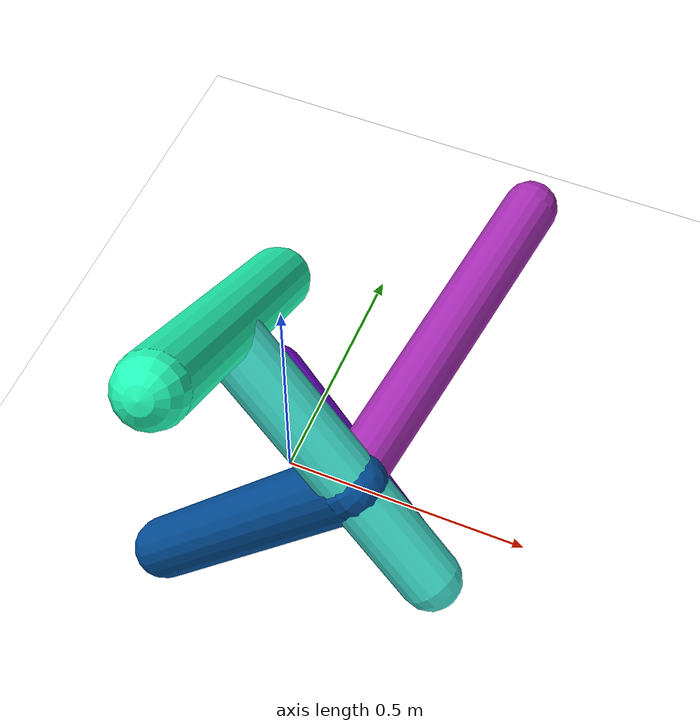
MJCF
<mujoco model="morphology">
  <option timestep="0.01"/>
  <default>
    <default class="/"/>
    <default class="0/"/>
    <default class="0/1/"/>
    <default class="0/1/2/"/>
    <default class="0/1/3/"/>
    <default class="0/1/3/4/"/>
  </default>
  <asset>
    <texture name="texplane" type="2d" builtin="checker" rgb1="0.10000000000000001 0.20000000000000001 0.29999999999999999" rgb2="0.20000000000000001 0.29999999999999999 0.40000000000000002" width="300" height="300"/>
    <material name="MatPlane" class="/" texture="texplane" texrepeat="20 20" specular="1" shininess="1" reflectance="0.5"/>
  </asset>
  <worldbody>
    <light name="//unnamed_light_0" class="/" directional="true" pos="0 0 1.5" dir="0 0 -1.3" cutoff="100" exponent="1" diffuse="1 1 1" specular="0.10000000000000001 0.10000000000000001 0.10000000000000001"/>
    <geom name="ground" class="/" type="plane" size="15 15 0.5" material="MatPlane" rgba="1 1 1 1"/>
    <site name="body" class="/" size="9.9999999999999995e-07 9.9999999999999995e-07 9.9999999999999995e-07" pos="0 0 0.60093173980712888"/>
    <body pos="0 0 0.60093173980712888" name="0/">
      <freejoint name="0/"/>
      <geom name="0/geom" class="0/" type="capsule" contype="1" conaffinity="1" condim="3" size="0.055855480906535915" rgba="0.13386539527524155 0.99767268537504339 0.72522398856361547 1" friction="0.59999999999999998 0.10000000000000001 0.10000000000000001" fromto="0 0 0 0.072709314718920615 -0.51949174318084468 0.41173482907321524"/>
      <site name="0/end0" class="0/" size="0.0050000000000000001" pos="0.072709314718920615 -0.51949174318084468 0.41173482907321524"/>
      <site name="0/attach1" class="0/" size="9.9999999999999995e-07 9.9999999999999995e-07 9.9999999999999995e-07" pos="0.03748266201658991 -0.26780521182645239 0.21225502534675586"/>
      <body pos="0.03748266201658991 -0.26780521182645239 0.21225502534675586" name="0/1/">
        <joint name="0/1/joint/" class="0/" type="hinge" axis="0 1 0" limited="true" range="-34.41796722703473 34.41796722703473"/>
        <geom name="0/1/geom" class="0/1/" type="capsule" contype="1" conaffinity="1" condim="3" size="0.052557753542564409" rgba="0.2746571344022678 0.94238796674150105 0.87616160403873045 1" friction="0.59999999999999998 0.10000000000000001 0.10000000000000001" fromto="0 0 0 0.38160970025605923 -0.078859084550443548 -0.38442130659074619"/>
        <site name="0/1/end1" class="0/1/" size="0.0050000000000000001" pos="0.38160970025605923 -0.078859084550443548 -0.38442130659074619"/>
        <site name="0/1/attach2" class="0/1/" size="9.9999999999999995e-07 9.9999999999999995e-07 9.9999999999999995e-07" pos="0.36528510285159466 -0.075485630452953839 -0.36797643357105803"/>
        <body pos="0.36528510285159466 -0.075485630452953839 -0.36797643357105803" name="0/1/2/">
          <joint name="0/1/2/joint/" class="0/1/" type="hinge" axis="0.71691820399796957 0.1400955256472548 0.68293596513139154" limited="true" range="-54.114841872092015 54.114841872092015"/>
          <geom name="0/1/2/geom" class="0/1/2/" type="capsule" contype="1" conaffinity="1" condim="3" size="0.050584271369217573" rgba="0.4175813724465478 0.028594336731202707 0.78306195823943026 1" friction="0.59999999999999998 0.10000000000000001 0.10000000000000001" fromto="0 0 0 -0.40784075069494136 0.32361970510568616 -0.095483563355954981"/>
          <site name="0/1/2/end2" class="0/1/2/" size="0.0050000000000000001" pos="-0.40784075069494136 0.32361970510568616 -0.095483563355954981"/>
        </body>
        <site name="0/1/attach3" class="0/1/" size="9.9999999999999995e-07 9.9999999999999995e-07 9.9999999999999995e-07" pos="0.23084798191430728 -0.04770439669606006 -0.23254881301966035"/>
        <body pos="0.23084798191430728 -0.04770439669606006 -0.23254881301966035" name="0/1/3/">
          <joint name="0/1/3/joint/" class="0/1/" type="hinge" axis="-1.1102230246251565e-16 -0.97960097911836064 0.20095253596396667" limited="true" range="-40.757908297882928 40.757908297882928"/>
          <geom name="0/1/3/geom" class="0/1/3/" type="capsule" contype="1" conaffinity="1" condim="3" size="0.058544799975051721" rgba="0.012894919471318489 0.32229985107054382 0.63031698498025857 1" friction="0.59999999999999998 0.10000000000000001 0.10000000000000001" fromto="0 0 0 -0.38094764375038542 0.0011913729150730967 -0.48063795254808761"/>
          <site name="0/1/3/end3" class="0/1/3/" size="0.0050000000000000001" pos="-0.38094764375038542 0.0011913729150730967 -0.48063795254808761"/>
          <site name="0/1/3/attach4" class="0/1/3/" size="9.9999999999999995e-07 9.9999999999999995e-07 9.9999999999999995e-07" pos="-0.0091240748584079951 2.8534565942949705e-05 -0.011511756879940707"/>
          <body pos="-0.0091240748584079951 2.8534565942949705e-05 -0.011511756879940707" name="0/1/3/4/">
            <geom name="0/1/3/4/geom" class="0/1/3/4/" type="capsule" contype="1" conaffinity="1" condim="3" size="0.047037628520217992" rgba="0.64209193900989925 0.16705150086803944 0.69633590609071205 1" friction="0.59999999999999998 0.10000000000000001 0.10000000000000001" fromto="0 0 0 0.09436824932024257 0.58895821735251319 0.081563453498425753"/>
            <site name="0/1/3/4/end4" class="0/1/3/4/" size="0.0050000000000000001" pos="0.09436824932024257 0.58895821735251319 0.081563453498425753"/>
          </body>
        </body>
      </body>
      <camera name="0/iso" class="0/" mode="trackcom" pos="-2.2999999999999998 -2.2999999999999998 1" xyaxes="0.45000000000000001 -0.45000000000000001 0 0.29999999999999999 0.14999999999999999 0.93999999999999995"/>
    </body>
  </worldbody>
  <actuator>
    <motor name="0/1/motor" class="0/1/" ctrllimited="true" ctrlrange="-1 1" gear="52" joint="0/1/joint/"/>
    <motor name="0/1/2/motor" class="0/1/2/" ctrllimited="true" ctrlrange="-1 1" gear="51" joint="0/1/2/joint/"/>
    <motor name="0/1/3/motor" class="0/1/3/" ctrllimited="true" ctrlrange="-1 1" gear="92" joint="0/1/3/joint/"/>
  </actuator>
  <sensor>
    <subtreelinvel name="velocity" body="0/"/>
  </sensor>
</mujoco>
